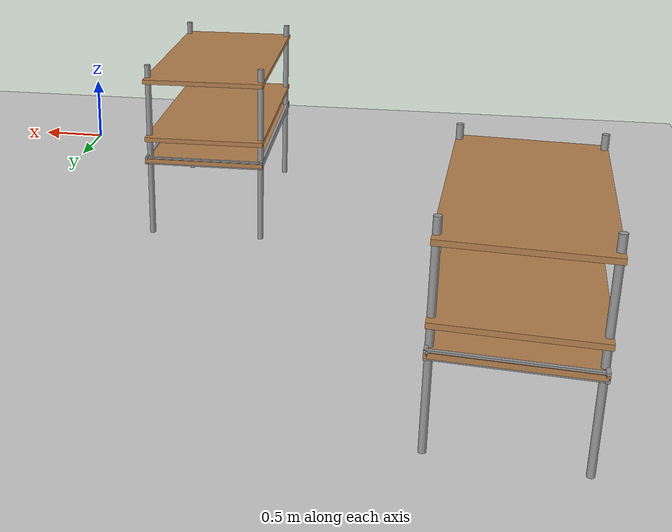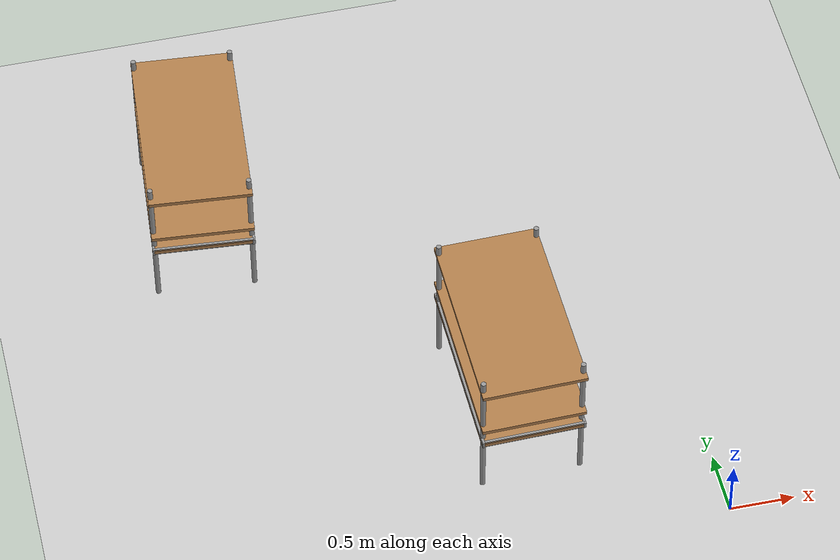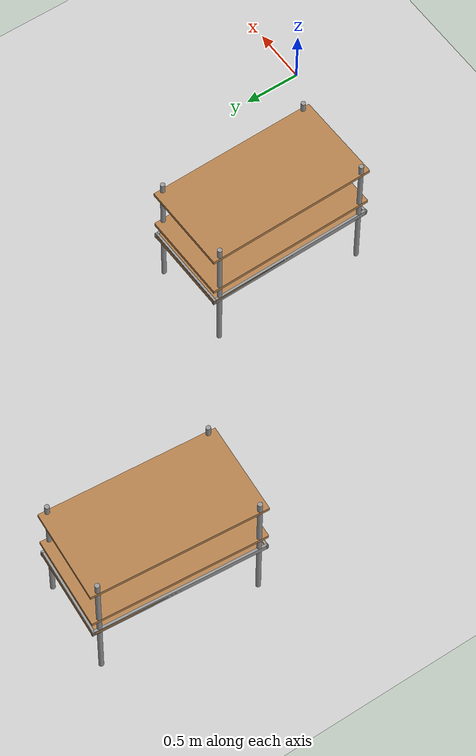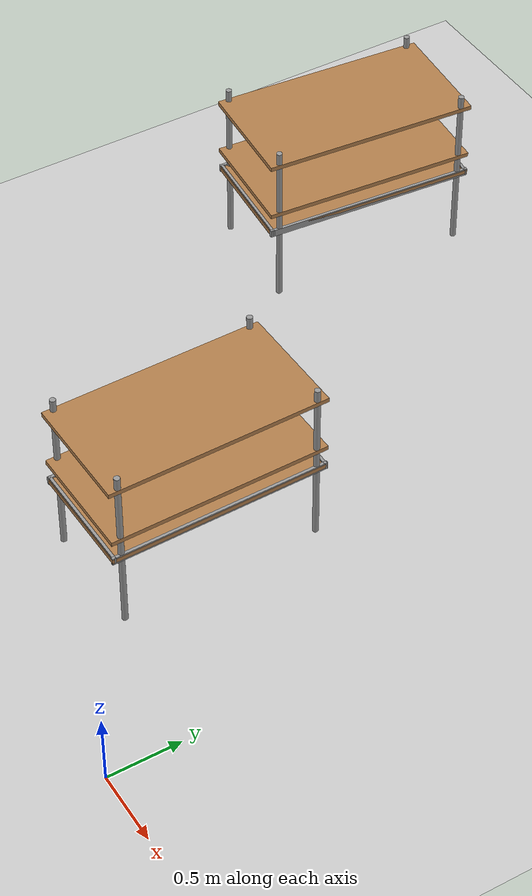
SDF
<sdf version="1.7">
 <world name="default">
  <model name="ground_plane">
   <static>1</static>
   <link name="link">
    <collision name="collision">
     <geometry><plane><normal>0 0 1</normal><size>100 100</size></plane></geometry>
     <surface><friction><ode><mu>100</mu><mu2>50</mu2></ode></friction></surface>
    </collision>
    <visual name="visual">
     <cast_shadows>0</cast_shadows>
     <geometry><plane><normal>0 0 1</normal><size>100 100</size></plane></geometry>
     <material>
      <script><uri>file://media/materials/scripts/gazebo.material</uri><name>Gazebo/Grey</name></script>
     </material>
    </visual>
   </link>
  </model>
  <model name="warehouse_pallet_clone_clone">
   <link name="warehouse_pallet::link">
    <pose>0 0 -0 0 -0 1.57</pose>
    <inertial>
     <inertia>
      <ixx>0.0267042</ixx>
      <ixy>0</ixy>
      <ixz>0</ixz>
      <iyy>0.0937875</iyy>
      <iyz>0</iyz>
      <izz>0.120417</izz>
     </inertia>
     <mass>0.5</mass>
    </inertial>
    <visual name="holding1_visual">
     <pose>0 0.39 0.45 0 -0 0</pose>
     <geometry><box><size>1.5 0.02 0.05</size></box></geometry>
     <material>
      <script><uri>file://media/materials/scripts/gazebo.material</uri><name>Gazebo/Grey</name></script>
      <shader type="pixel"><normal_map>__default__</normal_map></shader>
      <ambient>0.3 0.3 0.3 1</ambient>
      <diffuse>0.7 0.7 0.7 1</diffuse>
      <specular>0.01 0.01 0.01 1</specular>
      <emissive>0 0 0 1</emissive>
     </material>
    </visual>
    <visual name="front_left_leg">
     <pose>0.68 0.38 0.5 0 -0 0</pose>
     <geometry><cylinder><radius>0.02</radius><length>1.2</length></cylinder></geometry>
     <material>
      <script><uri>file://media/materials/scripts/gazebo.material</uri><name>Gazebo/Grey</name></script>
      <shader type="pixel"><normal_map>__default__</normal_map></shader>
      <ambient>0.3 0.3 0.3 1</ambient>
      <diffuse>0.7 0.7 0.7 1</diffuse>
      <specular>0.01 0.01 0.01 1</specular>
      <emissive>0 0 0 1</emissive>
     </material>
    </visual>
    <visual name="front_right_leg">
     <pose>0.68 -0.38 0.5 0 -0 0</pose>
     <geometry><cylinder><radius>0.02</radius><length>1.2</length></cylinder></geometry>
     <material>
      <script><uri>file://media/materials/scripts/gazebo.material</uri><name>Gazebo/Grey</name></script>
      <shader type="pixel"><normal_map>__default__</normal_map></shader>
      <ambient>0.3 0.3 0.3 1</ambient>
      <diffuse>0.7 0.7 0.7 1</diffuse>
      <specular>0.01 0.01 0.01 1</specular>
      <emissive>0 0 0 1</emissive>
     </material>
    </visual>
    <visual name="back_right_leg">
     <pose>-0.68 -0.38 0.5 0 -0 0</pose>
     <geometry><cylinder><radius>0.02</radius><length>1.2</length></cylinder></geometry>
     <material>
      <script><uri>file://media/materials/scripts/gazebo.material</uri><name>Gazebo/Grey</name></script>
      <shader type="pixel"><normal_map>__default__</normal_map></shader>
      <ambient>0.3 0.3 0.3 1</ambient>
      <diffuse>0.7 0.7 0.7 1</diffuse>
      <specular>0.01 0.01 0.01 1</specular>
      <emissive>0 0 0 1</emissive>
     </material>
    </visual>
    <visual name="back_left_leg">
     <pose>-0.68 0.38 0.5 0 -0 0</pose>
     <geometry><cylinder><radius>0.02</radius><length>1.2</length></cylinder></geometry>
     <material>
      <script><uri>file://media/materials/scripts/gazebo.material</uri><name>Gazebo/Grey</name></script>
      <shader type="pixel"><normal_map>__default__</normal_map></shader>
      <ambient>0.3 0.3 0.3 1</ambient>
      <diffuse>0.7 0.7 0.7 1</diffuse>
      <specular>0.01 0.01 0.01 1</specular>
      <emissive>0 0 0 1</emissive>
     </material>
    </visual>
    <visual name="visual1">
     <pose>0 0 0.45 0 -0 0</pose>
     <geometry><box><size>1.5 0.8 0.03</size></box></geometry>
     <material>
      <script><uri>file://media/materials/scripts/gazebo.material</uri><name>Gazebo/Wood</name></script>
      <shader type="pixel"><normal_map>__default__</normal_map></shader>
      <ambient>1 1 1 1</ambient>
      <diffuse>1 1 1 1</diffuse>
      <specular>0.2 0.2 0.2 1</specular>
      <emissive>0 0 0 1</emissive>
     </material>
    </visual>
    <visual name="holding2_visual">
     <pose>0 -0.39 0.45 0 -0 0</pose>
     <geometry><box><size>1.5 0.02 0.05</size></box></geometry>
     <material>
      <script><uri>file://media/materials/scripts/gazebo.material</uri><name>Gazebo/Grey</name></script>
      <shader type="pixel"><normal_map>__default__</normal_map></shader>
      <ambient>0.3 0.3 0.3 1</ambient>
      <diffuse>0.7 0.7 0.7 1</diffuse>
      <specular>0.01 0.01 0.01 1</specular>
      <emissive>0 0 0 1</emissive>
     </material>
    </visual>
    <visual name="holding3_visual">
     <pose>0.735 0 0.45 0 -0 1.57</pose>
     <geometry><box><size>0.8 0.02 0.05</size></box></geometry>
     <material>
      <script><uri>file://media/materials/scripts/gazebo.material</uri><name>Gazebo/Grey</name></script>
      <shader type="pixel"><normal_map>__default__</normal_map></shader>
      <ambient>0.3 0.3 0.3 1</ambient>
      <diffuse>0.7 0.7 0.7 1</diffuse>
      <specular>0.01 0.01 0.01 1</specular>
      <emissive>0 0 0 1</emissive>
     </material>
    </visual>
    <visual name="holding4_visual">
     <pose>-0.735 0 0.45 0 -0 1.57</pose>
     <geometry><box><size>0.8 0.02 0.05</size></box></geometry>
     <material>
      <script><uri>file://media/materials/scripts/gazebo.material</uri><name>Gazebo/Grey</name></script>
      <shader type="pixel"><normal_map>__default__</normal_map></shader>
      <ambient>0.3 0.3 0.3 1</ambient>
      <diffuse>0.7 0.7 0.7 1</diffuse>
      <specular>0.01 0.01 0.01 1</specular>
      <emissive>0 0 0 1</emissive>
     </material>
    </visual>
    <visual name="visual2">
     <pose>0 0 0.6 0 -0 0</pose>
     <geometry><box><size>1.5 0.8 0.03</size></box></geometry>
     <material>
      <script><uri>file://media/materials/scripts/gazebo.material</uri><name>Gazebo/Wood</name></script>
      <shader type="pixel"><normal_map>__default__</normal_map></shader>
      <ambient>1 1 1 1</ambient>
      <diffuse>1 1 1 1</diffuse>
      <specular>0.2 0.2 0.2 1</specular>
      <emissive>0 0 0 1</emissive>
     </material>
    </visual>
    <visual name="visual3">
     <pose>0 0 1 0 -0 0</pose>
     <geometry><box><size>1.5 0.8 0.03</size></box></geometry>
     <material>
      <script><uri>file://media/materials/scripts/gazebo.material</uri><name>Gazebo/Wood</name></script>
      <shader type="pixel"><normal_map>__default__</normal_map></shader>
      <ambient>1 1 1 1</ambient>
      <diffuse>1 1 1 1</diffuse>
      <specular>0.2 0.2 0.2 1</specular>
      <emissive>0 0 0 1</emissive>
     </material>
    </visual>
    <collision name="surface1">
     <pose>0 0 0.45 0 -0 0</pose>
     <geometry><box><size>1.5 0.8 0.03</size></box></geometry>
     <surface>
      <friction>
       <ode><mu>20</mu><mu2>20</mu2><fdir1>0 0 0</fdir1><slip1>0</slip1><slip2>0</slip2></ode>
       <torsional>
        <coefficient>1</coefficient>
        <patch_radius>0</patch_radius>
        <surface_radius>0</surface_radius>
        <use_patch_radius>1</use_patch_radius>
        <ode><slip>0</slip></ode>
       </torsional>
      </friction>
      <bounce><restitution_coefficient>0</restitution_coefficient><threshold>1e+06</threshold></bounce>
      <contact>
       <collide_without_contact>0</collide_without_contact>
       <collide_without_contact_bitmask>1</collide_without_contact_bitmask>
       <collide_bitmask>1</collide_bitmask>
       <ode>
        <soft_cfm>0</soft_cfm>
        <soft_erp>0.2</soft_erp>
        <kp>1e+13</kp>
        <kd>1</kd>
        <max_vel>0.01</max_vel>
        <min_depth>0</min_depth>
       </ode>
       <bullet>
        <split_impulse>1</split_impulse>
        <split_impulse_penetration_threshold>-0.01</split_impulse_penetration_threshold>
        <soft_cfm>0</soft_cfm>
        <soft_erp>0.2</soft_erp>
        <kp>1e+13</kp>
        <kd>1</kd>
       </bullet>
      </contact>
     </surface>
    </collision>
    <collision name="holding1_collision">
     <pose>0 0.39 0.45 0 -0 0</pose>
     <geometry><box><size>1.5 0.02 0.05</size></box></geometry>
     <surface>
      <friction>
       <ode><mu>1e+09</mu><mu2>1e+09</mu2><fdir1>0 0 0</fdir1><slip1>0</slip1><slip2>0</slip2></ode>
       <torsional>
        <coefficient>1</coefficient>
        <patch_radius>0</patch_radius>
        <surface_radius>0</surface_radius>
        <use_patch_radius>1</use_patch_radius>
        <ode><slip>0</slip></ode>
       </torsional>
      </friction>
      <bounce><restitution_coefficient>0</restitution_coefficient><threshold>1e+06</threshold></bounce>
      <contact>
       <collide_without_contact>0</collide_without_contact>
       <collide_without_contact_bitmask>1</collide_without_contact_bitmask>
       <collide_bitmask>1</collide_bitmask>
       <ode>
        <soft_cfm>0</soft_cfm>
        <soft_erp>0.2</soft_erp>
        <kp>1e+13</kp>
        <kd>1</kd>
        <max_vel>0.01</max_vel>
        <min_depth>0</min_depth>
       </ode>
       <bullet>
        <split_impulse>1</split_impulse>
        <split_impulse_penetration_threshold>-0.01</split_impulse_penetration_threshold>
        <soft_cfm>0</soft_cfm>
        <soft_erp>0.2</soft_erp>
        <kp>1e+13</kp>
        <kd>1</kd>
       </bullet>
      </contact>
     </surface>
    </collision>
    <collision name="holding2_collision">
     <pose>0 -0.39 0.45 0 -0 0</pose>
     <geometry><box><size>1.5 0.02 0.05</size></box></geometry>
     <surface>
      <friction>
       <ode><mu>1e+09</mu><mu2>1e+09</mu2><fdir1>0 0 0</fdir1><slip1>0</slip1><slip2>0</slip2></ode>
       <torsional>
        <coefficient>1</coefficient>
        <patch_radius>0</patch_radius>
        <surface_radius>0</surface_radius>
        <use_patch_radius>1</use_patch_radius>
        <ode><slip>0</slip></ode>
       </torsional>
      </friction>
      <bounce><restitution_coefficient>0</restitution_coefficient><threshold>1e+06</threshold></bounce>
      <contact>
       <collide_without_contact>0</collide_without_contact>
       <collide_without_contact_bitmask>1</collide_without_contact_bitmask>
       <collide_bitmask>1</collide_bitmask>
       <ode>
        <soft_cfm>0</soft_cfm>
        <soft_erp>0.2</soft_erp>
        <kp>1e+13</kp>
        <kd>1</kd>
        <max_vel>0.01</max_vel>
        <min_depth>0</min_depth>
       </ode>
       <bullet>
        <split_impulse>1</split_impulse>
        <split_impulse_penetration_threshold>-0.01</split_impulse_penetration_threshold>
        <soft_cfm>0</soft_cfm>
        <soft_erp>0.2</soft_erp>
        <kp>1e+13</kp>
        <kd>1</kd>
       </bullet>
      </contact>
     </surface>
    </collision>
    <collision name="holding3_collision">
     <pose>0.735 0 0.45 0 -0 1.57</pose>
     <geometry><box><size>0.8 0.02 0.05</size></box></geometry>
     <surface>
      <friction>
       <ode><mu>1e+09</mu><mu2>1e+09</mu2><fdir1>0 0 0</fdir1><slip1>0</slip1><slip2>0</slip2></ode>
       <torsional>
        <coefficient>1</coefficient>
        <patch_radius>0</patch_radius>
        <surface_radius>0</surface_radius>
        <use_patch_radius>1</use_patch_radius>
        <ode><slip>0</slip></ode>
       </torsional>
      </friction>
      <bounce><restitution_coefficient>0</restitution_coefficient><threshold>1e+06</threshold></bounce>
      <contact>
       <collide_without_contact>0</collide_without_contact>
       <collide_without_contact_bitmask>1</collide_without_contact_bitmask>
       <collide_bitmask>1</collide_bitmask>
       <ode>
        <soft_cfm>0</soft_cfm>
        <soft_erp>0.2</soft_erp>
        <kp>1e+13</kp>
        <kd>1</kd>
        <max_vel>0.01</max_vel>
        <min_depth>0</min_depth>
       </ode>
       <bullet>
        <split_impulse>1</split_impulse>
        <split_impulse_penetration_threshold>-0.01</split_impulse_penetration_threshold>
        <soft_cfm>0</soft_cfm>
        <soft_erp>0.2</soft_erp>
        <kp>1e+13</kp>
        <kd>1</kd>
       </bullet>
      </contact>
     </surface>
    </collision>
    <collision name="holding4_collision">
     <pose>-0.735 0 0.45 0 -0 1.57</pose>
     <geometry><box><size>0.8 0.02 0.05</size></box></geometry>
     <surface>
      <friction>
       <ode><mu>1e+09</mu><mu2>1e+09</mu2><fdir1>0 0 0</fdir1><slip1>0</slip1><slip2>0</slip2></ode>
       <torsional>
        <coefficient>1</coefficient>
        <patch_radius>0</patch_radius>
        <surface_radius>0</surface_radius>
        <use_patch_radius>1</use_patch_radius>
        <ode><slip>0</slip></ode>
       </torsional>
      </friction>
      <bounce><restitution_coefficient>0</restitution_coefficient><threshold>1e+06</threshold></bounce>
      <contact>
       <collide_without_contact>0</collide_without_contact>
       <collide_without_contact_bitmask>1</collide_without_contact_bitmask>
       <collide_bitmask>1</collide_bitmask>
       <ode>
        <soft_cfm>0</soft_cfm>
        <soft_erp>0.2</soft_erp>
        <kp>1e+13</kp>
        <kd>1</kd>
        <max_vel>0.01</max_vel>
        <min_depth>0</min_depth>
       </ode>
       <bullet>
        <split_impulse>1</split_impulse>
        <split_impulse_penetration_threshold>-0.01</split_impulse_penetration_threshold>
        <soft_cfm>0</soft_cfm>
        <soft_erp>0.2</soft_erp>
        <kp>1e+13</kp>
        <kd>1</kd>
       </bullet>
      </contact>
     </surface>
    </collision>
    <collision name="surface3">
     <pose>0 0 1 0 -0 0</pose>
     <geometry><box><size>1.5 0.8 0.03</size></box></geometry>
     <surface>
      <friction>
       <ode><mu>2.5</mu><mu2>2.5</mu2><fdir1>0 0 0</fdir1><slip1>0</slip1><slip2>0</slip2></ode>
       <torsional>
        <coefficient>1</coefficient>
        <patch_radius>0</patch_radius>
        <surface_radius>0</surface_radius>
        <use_patch_radius>1</use_patch_radius>
        <ode><slip>0</slip></ode>
       </torsional>
      </friction>
      <bounce><restitution_coefficient>0</restitution_coefficient><threshold>1e+06</threshold></bounce>
      <contact>
       <collide_without_contact>0</collide_without_contact>
       <collide_without_contact_bitmask>1</collide_without_contact_bitmask>
       <collide_bitmask>1</collide_bitmask>
       <ode>
        <soft_cfm>0</soft_cfm>
        <soft_erp>0.2</soft_erp>
        <kp>1e+13</kp>
        <kd>1</kd>
        <max_vel>0.01</max_vel>
        <min_depth>0</min_depth>
       </ode>
       <bullet>
        <split_impulse>1</split_impulse>
        <split_impulse_penetration_threshold>-0.01</split_impulse_penetration_threshold>
        <soft_cfm>0</soft_cfm>
        <soft_erp>0.2</soft_erp>
        <kp>1e+13</kp>
        <kd>1</kd>
       </bullet>
      </contact>
     </surface>
    </collision>
    <collision name="surface2">
     <pose>0 0 0.6 0 -0 0</pose>
     <geometry><box><size>1.5 0.8 0.03</size></box></geometry>
     <surface>
      <friction>
       <ode><mu>2.5</mu><mu2>2.5</mu2><fdir1>0 0 0</fdir1><slip1>0</slip1><slip2>0</slip2></ode>
       <torsional>
        <coefficient>1</coefficient>
        <patch_radius>0</patch_radius>
        <surface_radius>0</surface_radius>
        <use_patch_radius>1</use_patch_radius>
        <ode><slip>0</slip></ode>
       </torsional>
      </friction>
      <bounce><restitution_coefficient>0</restitution_coefficient><threshold>1e+06</threshold></bounce>
      <contact>
       <collide_without_contact>0</collide_without_contact>
       <collide_without_contact_bitmask>1</collide_without_contact_bitmask>
       <collide_bitmask>1</collide_bitmask>
       <ode>
        <soft_cfm>0</soft_cfm>
        <soft_erp>0.2</soft_erp>
        <kp>1e+13</kp>
        <kd>1</kd>
        <max_vel>0.01</max_vel>
        <min_depth>0</min_depth>
       </ode>
       <bullet>
        <split_impulse>1</split_impulse>
        <split_impulse_penetration_threshold>-0.01</split_impulse_penetration_threshold>
        <soft_cfm>0</soft_cfm>
        <soft_erp>0.2</soft_erp>
        <kp>1e+13</kp>
        <kd>1</kd>
       </bullet>
      </contact>
     </surface>
    </collision>
    <collision name="front_right_leg">
     <pose>0.68 -0.38 0.5 0 -0 0</pose>
     <geometry><cylinder><radius>0.02</radius><length>1</length></cylinder></geometry>
     <surface>
      <friction>
       <ode><mu>1</mu><mu2>1.2</mu2><fdir1>0 0 0</fdir1><slip1>0</slip1><slip2>0</slip2></ode>
       <torsional>
        <coefficient>1</coefficient>
        <patch_radius>0</patch_radius>
        <surface_radius>0</surface_radius>
        <use_patch_radius>1</use_patch_radius>
        <ode><slip>0</slip></ode>
       </torsional>
      </friction>
      <bounce><restitution_coefficient>0</restitution_coefficient><threshold>1e+06</threshold></bounce>
      <contact>
       <collide_without_contact>0</collide_without_contact>
       <collide_without_contact_bitmask>1</collide_without_contact_bitmask>
       <collide_bitmask>1</collide_bitmask>
       <ode>
        <soft_cfm>0</soft_cfm>
        <soft_erp>0.2</soft_erp>
        <kp>1e+13</kp>
        <kd>1</kd>
        <max_vel>0.01</max_vel>
        <min_depth>0</min_depth>
       </ode>
       <bullet>
        <split_impulse>1</split_impulse>
        <split_impulse_penetration_threshold>-0.01</split_impulse_penetration_threshold>
        <soft_cfm>0</soft_cfm>
        <soft_erp>0.2</soft_erp>
        <kp>1e+13</kp>
        <kd>1</kd>
       </bullet>
      </contact>
     </surface>
    </collision>
    <collision name="back_right_leg">
     <pose>-0.68 -0.38 0.5 0 -0 0</pose>
     <geometry><cylinder><radius>0.02</radius><length>1.2</length></cylinder></geometry>
     <surface>
      <friction>
       <ode><mu>1</mu><mu2>1</mu2><fdir1>0 0 0</fdir1><slip1>0</slip1><slip2>0</slip2></ode>
       <torsional>
        <coefficient>1</coefficient>
        <patch_radius>0</patch_radius>
        <surface_radius>0</surface_radius>
        <use_patch_radius>1</use_patch_radius>
        <ode><slip>0</slip></ode>
       </torsional>
      </friction>
      <bounce><restitution_coefficient>0</restitution_coefficient><threshold>1e+06</threshold></bounce>
      <contact>
       <collide_without_contact>0</collide_without_contact>
       <collide_without_contact_bitmask>1</collide_without_contact_bitmask>
       <collide_bitmask>1</collide_bitmask>
       <ode>
        <soft_cfm>0</soft_cfm>
        <soft_erp>0.2</soft_erp>
        <kp>1e+13</kp>
        <kd>1</kd>
        <max_vel>0.01</max_vel>
        <min_depth>0</min_depth>
       </ode>
       <bullet>
        <split_impulse>1</split_impulse>
        <split_impulse_penetration_threshold>-0.01</split_impulse_penetration_threshold>
        <soft_cfm>0</soft_cfm>
        <soft_erp>0.2</soft_erp>
        <kp>1e+13</kp>
        <kd>1</kd>
       </bullet>
      </contact>
     </surface>
    </collision>
    <collision name="front_left_leg">
     <pose>0.68 0.38 0.5 0 -0 0</pose>
     <geometry><cylinder><radius>0.02</radius><length>1.2</length></cylinder></geometry>
     <surface>
      <friction>
       <ode><mu>1</mu><mu2>1</mu2><fdir1>0 0 0</fdir1><slip1>0</slip1><slip2>0</slip2></ode>
       <torsional>
        <coefficient>1</coefficient>
        <patch_radius>0</patch_radius>
        <surface_radius>0</surface_radius>
        <use_patch_radius>1</use_patch_radius>
        <ode><slip>0</slip></ode>
       </torsional>
      </friction>
      <bounce><restitution_coefficient>0</restitution_coefficient><threshold>1e+06</threshold></bounce>
      <contact>
       <collide_without_contact>0</collide_without_contact>
       <collide_without_contact_bitmask>1</collide_without_contact_bitmask>
       <collide_bitmask>1</collide_bitmask>
       <ode>
        <soft_cfm>0</soft_cfm>
        <soft_erp>0.2</soft_erp>
        <kp>1e+13</kp>
        <kd>1</kd>
        <max_vel>0.01</max_vel>
        <min_depth>0</min_depth>
       </ode>
       <bullet>
        <split_impulse>1</split_impulse>
        <split_impulse_penetration_threshold>-0.01</split_impulse_penetration_threshold>
        <soft_cfm>0</soft_cfm>
        <soft_erp>0.2</soft_erp>
        <kp>1e+13</kp>
        <kd>1</kd>
       </bullet>
      </contact>
     </surface>
    </collision>
    <collision name="back_left_leg">
     <pose>-0.68 0.38 0.5 0 -0 0</pose>
     <geometry><cylinder><radius>0.02</radius><length>1.2</length></cylinder></geometry>
     <surface>
      <friction>
       <ode><mu>1</mu><mu2>1</mu2><fdir1>0 0 0</fdir1><slip1>0</slip1><slip2>0</slip2></ode>
       <torsional>
        <coefficient>1</coefficient>
        <patch_radius>0</patch_radius>
        <surface_radius>0</surface_radius>
        <use_patch_radius>1</use_patch_radius>
        <ode><slip>0</slip></ode>
       </torsional>
      </friction>
      <bounce><restitution_coefficient>0</restitution_coefficient><threshold>1e+06</threshold></bounce>
      <contact>
       <collide_without_contact>0</collide_without_contact>
       <collide_without_contact_bitmask>1</collide_without_contact_bitmask>
       <collide_bitmask>1</collide_bitmask>
       <ode>
        <soft_cfm>0</soft_cfm>
        <soft_erp>0.2</soft_erp>
        <kp>1e+13</kp>
        <kd>1</kd>
        <max_vel>0.01</max_vel>
        <min_depth>0</min_depth>
       </ode>
       <bullet>
        <split_impulse>1</split_impulse>
        <split_impulse_penetration_threshold>-0.01</split_impulse_penetration_threshold>
        <soft_cfm>0</soft_cfm>
        <soft_erp>0.2</soft_erp>
        <kp>1e+13</kp>
        <kd>1</kd>
       </bullet>
      </contact>
     </surface>
    </collision>
   </link>
   <static>0</static>
   <pose>-3.36834 3.71303 0.099964 -8.7e-05 0.000264 -0.081578</pose>
  </model>
  <model name="warehouse_pallet_clone_0_clone">
   <link name="warehouse_pallet::link">
    <pose>0 0 -0 0 -0 1.57</pose>
    <inertial>
     <inertia>
      <ixx>0.0267042</ixx>
      <ixy>0</ixy>
      <ixz>0</ixz>
      <iyy>0.0937875</iyy>
      <iyz>0</iyz>
      <izz>0.120417</izz>
     </inertia>
     <mass>0.5</mass>
    </inertial>
    <visual name="holding1_visual">
     <pose>0 0.39 0.45 0 -0 0</pose>
     <geometry><box><size>1.5 0.02 0.05</size></box></geometry>
     <material>
      <script><uri>file://media/materials/scripts/gazebo.material</uri><name>Gazebo/Grey</name></script>
      <shader type="pixel"><normal_map>__default__</normal_map></shader>
      <ambient>0.3 0.3 0.3 1</ambient>
      <diffuse>0.7 0.7 0.7 1</diffuse>
      <specular>0.01 0.01 0.01 1</specular>
      <emissive>0 0 0 1</emissive>
     </material>
    </visual>
    <visual name="front_left_leg">
     <pose>0.68 0.38 0.5 0 -0 0</pose>
     <geometry><cylinder><radius>0.02</radius><length>1.2</length></cylinder></geometry>
     <material>
      <script><uri>file://media/materials/scripts/gazebo.material</uri><name>Gazebo/Grey</name></script>
      <shader type="pixel"><normal_map>__default__</normal_map></shader>
      <ambient>0.3 0.3 0.3 1</ambient>
      <diffuse>0.7 0.7 0.7 1</diffuse>
      <specular>0.01 0.01 0.01 1</specular>
      <emissive>0 0 0 1</emissive>
     </material>
    </visual>
    <visual name="front_right_leg">
     <pose>0.68 -0.38 0.5 0 -0 0</pose>
     <geometry><cylinder><radius>0.02</radius><length>1.2</length></cylinder></geometry>
     <material>
      <script><uri>file://media/materials/scripts/gazebo.material</uri><name>Gazebo/Grey</name></script>
      <shader type="pixel"><normal_map>__default__</normal_map></shader>
      <ambient>0.3 0.3 0.3 1</ambient>
      <diffuse>0.7 0.7 0.7 1</diffuse>
      <specular>0.01 0.01 0.01 1</specular>
      <emissive>0 0 0 1</emissive>
     </material>
    </visual>
    <visual name="back_right_leg">
     <pose>-0.68 -0.38 0.5 0 -0 0</pose>
     <geometry><cylinder><radius>0.02</radius><length>1.2</length></cylinder></geometry>
     <material>
      <script><uri>file://media/materials/scripts/gazebo.material</uri><name>Gazebo/Grey</name></script>
      <shader type="pixel"><normal_map>__default__</normal_map></shader>
      <ambient>0.3 0.3 0.3 1</ambient>
      <diffuse>0.7 0.7 0.7 1</diffuse>
      <specular>0.01 0.01 0.01 1</specular>
      <emissive>0 0 0 1</emissive>
     </material>
    </visual>
    <visual name="back_left_leg">
     <pose>-0.68 0.38 0.5 0 -0 0</pose>
     <geometry><cylinder><radius>0.02</radius><length>1.2</length></cylinder></geometry>
     <material>
      <script><uri>file://media/materials/scripts/gazebo.material</uri><name>Gazebo/Grey</name></script>
      <shader type="pixel"><normal_map>__default__</normal_map></shader>
      <ambient>0.3 0.3 0.3 1</ambient>
      <diffuse>0.7 0.7 0.7 1</diffuse>
      <specular>0.01 0.01 0.01 1</specular>
      <emissive>0 0 0 1</emissive>
     </material>
    </visual>
    <visual name="visual1">
     <pose>0 0 0.45 0 -0 0</pose>
     <geometry><box><size>1.5 0.8 0.03</size></box></geometry>
     <material>
      <script><uri>file://media/materials/scripts/gazebo.material</uri><name>Gazebo/Wood</name></script>
      <shader type="pixel"><normal_map>__default__</normal_map></shader>
      <ambient>1 1 1 1</ambient>
      <diffuse>1 1 1 1</diffuse>
      <specular>0.2 0.2 0.2 1</specular>
      <emissive>0 0 0 1</emissive>
     </material>
    </visual>
    <visual name="holding2_visual">
     <pose>0 -0.39 0.45 0 -0 0</pose>
     <geometry><box><size>1.5 0.02 0.05</size></box></geometry>
     <material>
      <script><uri>file://media/materials/scripts/gazebo.material</uri><name>Gazebo/Grey</name></script>
      <shader type="pixel"><normal_map>__default__</normal_map></shader>
      <ambient>0.3 0.3 0.3 1</ambient>
      <diffuse>0.7 0.7 0.7 1</diffuse>
      <specular>0.01 0.01 0.01 1</specular>
      <emissive>0 0 0 1</emissive>
     </material>
    </visual>
    <visual name="holding3_visual">
     <pose>0.735 0 0.45 0 -0 1.57</pose>
     <geometry><box><size>0.8 0.02 0.05</size></box></geometry>
     <material>
      <script><uri>file://media/materials/scripts/gazebo.material</uri><name>Gazebo/Grey</name></script>
      <shader type="pixel"><normal_map>__default__</normal_map></shader>
      <ambient>0.3 0.3 0.3 1</ambient>
      <diffuse>0.7 0.7 0.7 1</diffuse>
      <specular>0.01 0.01 0.01 1</specular>
      <emissive>0 0 0 1</emissive>
     </material>
    </visual>
    <visual name="holding4_visual">
     <pose>-0.735 0 0.45 0 -0 1.57</pose>
     <geometry><box><size>0.8 0.02 0.05</size></box></geometry>
     <material>
      <script><uri>file://media/materials/scripts/gazebo.material</uri><name>Gazebo/Grey</name></script>
      <shader type="pixel"><normal_map>__default__</normal_map></shader>
      <ambient>0.3 0.3 0.3 1</ambient>
      <diffuse>0.7 0.7 0.7 1</diffuse>
      <specular>0.01 0.01 0.01 1</specular>
      <emissive>0 0 0 1</emissive>
     </material>
    </visual>
    <visual name="visual2">
     <pose>0 0 0.6 0 -0 0</pose>
     <geometry><box><size>1.5 0.8 0.03</size></box></geometry>
     <material>
      <script><uri>file://media/materials/scripts/gazebo.material</uri><name>Gazebo/Wood</name></script>
      <shader type="pixel"><normal_map>__default__</normal_map></shader>
      <ambient>1 1 1 1</ambient>
      <diffuse>1 1 1 1</diffuse>
      <specular>0.2 0.2 0.2 1</specular>
      <emissive>0 0 0 1</emissive>
     </material>
    </visual>
    <visual name="visual3">
     <pose>0 0 1 0 -0 0</pose>
     <geometry><box><size>1.5 0.8 0.03</size></box></geometry>
     <material>
      <script><uri>file://media/materials/scripts/gazebo.material</uri><name>Gazebo/Wood</name></script>
      <shader type="pixel"><normal_map>__default__</normal_map></shader>
      <ambient>1 1 1 1</ambient>
      <diffuse>1 1 1 1</diffuse>
      <specular>0.2 0.2 0.2 1</specular>
      <emissive>0 0 0 1</emissive>
     </material>
    </visual>
    <collision name="surface1">
     <pose>0 0 0.45 0 -0 0</pose>
     <geometry><box><size>1.5 0.8 0.03</size></box></geometry>
     <surface>
      <friction>
       <ode><mu>20</mu><mu2>20</mu2><fdir1>0 0 0</fdir1><slip1>0</slip1><slip2>0</slip2></ode>
       <torsional>
        <coefficient>1</coefficient>
        <patch_radius>0</patch_radius>
        <surface_radius>0</surface_radius>
        <use_patch_radius>1</use_patch_radius>
        <ode><slip>0</slip></ode>
       </torsional>
      </friction>
      <bounce><restitution_coefficient>0</restitution_coefficient><threshold>1e+06</threshold></bounce>
      <contact>
       <collide_without_contact>0</collide_without_contact>
       <collide_without_contact_bitmask>1</collide_without_contact_bitmask>
       <collide_bitmask>1</collide_bitmask>
       <ode>
        <soft_cfm>0</soft_cfm>
        <soft_erp>0.2</soft_erp>
        <kp>1e+13</kp>
        <kd>1</kd>
        <max_vel>0.01</max_vel>
        <min_depth>0</min_depth>
       </ode>
       <bullet>
        <split_impulse>1</split_impulse>
        <split_impulse_penetration_threshold>-0.01</split_impulse_penetration_threshold>
        <soft_cfm>0</soft_cfm>
        <soft_erp>0.2</soft_erp>
        <kp>1e+13</kp>
        <kd>1</kd>
       </bullet>
      </contact>
     </surface>
    </collision>
    <collision name="holding1_collision">
     <pose>0 0.39 0.45 0 -0 0</pose>
     <geometry><box><size>1.5 0.02 0.05</size></box></geometry>
     <surface>
      <friction>
       <ode><mu>1e+09</mu><mu2>1e+09</mu2><fdir1>0 0 0</fdir1><slip1>0</slip1><slip2>0</slip2></ode>
       <torsional>
        <coefficient>1</coefficient>
        <patch_radius>0</patch_radius>
        <surface_radius>0</surface_radius>
        <use_patch_radius>1</use_patch_radius>
        <ode><slip>0</slip></ode>
       </torsional>
      </friction>
      <bounce><restitution_coefficient>0</restitution_coefficient><threshold>1e+06</threshold></bounce>
      <contact>
       <collide_without_contact>0</collide_without_contact>
       <collide_without_contact_bitmask>1</collide_without_contact_bitmask>
       <collide_bitmask>1</collide_bitmask>
       <ode>
        <soft_cfm>0</soft_cfm>
        <soft_erp>0.2</soft_erp>
        <kp>1e+13</kp>
        <kd>1</kd>
        <max_vel>0.01</max_vel>
        <min_depth>0</min_depth>
       </ode>
       <bullet>
        <split_impulse>1</split_impulse>
        <split_impulse_penetration_threshold>-0.01</split_impulse_penetration_threshold>
        <soft_cfm>0</soft_cfm>
        <soft_erp>0.2</soft_erp>
        <kp>1e+13</kp>
        <kd>1</kd>
       </bullet>
      </contact>
     </surface>
    </collision>
    <collision name="holding2_collision">
     <pose>0 -0.39 0.45 0 -0 0</pose>
     <geometry><box><size>1.5 0.02 0.05</size></box></geometry>
     <surface>
      <friction>
       <ode><mu>1e+09</mu><mu2>1e+09</mu2><fdir1>0 0 0</fdir1><slip1>0</slip1><slip2>0</slip2></ode>
       <torsional>
        <coefficient>1</coefficient>
        <patch_radius>0</patch_radius>
        <surface_radius>0</surface_radius>
        <use_patch_radius>1</use_patch_radius>
        <ode><slip>0</slip></ode>
       </torsional>
      </friction>
      <bounce><restitution_coefficient>0</restitution_coefficient><threshold>1e+06</threshold></bounce>
      <contact>
       <collide_without_contact>0</collide_without_contact>
       <collide_without_contact_bitmask>1</collide_without_contact_bitmask>
       <collide_bitmask>1</collide_bitmask>
       <ode>
        <soft_cfm>0</soft_cfm>
        <soft_erp>0.2</soft_erp>
        <kp>1e+13</kp>
        <kd>1</kd>
        <max_vel>0.01</max_vel>
        <min_depth>0</min_depth>
       </ode>
       <bullet>
        <split_impulse>1</split_impulse>
        <split_impulse_penetration_threshold>-0.01</split_impulse_penetration_threshold>
        <soft_cfm>0</soft_cfm>
        <soft_erp>0.2</soft_erp>
        <kp>1e+13</kp>
        <kd>1</kd>
       </bullet>
      </contact>
     </surface>
    </collision>
    <collision name="holding3_collision">
     <pose>0.735 0 0.45 0 -0 1.57</pose>
     <geometry><box><size>0.8 0.02 0.05</size></box></geometry>
     <surface>
      <friction>
       <ode><mu>1e+09</mu><mu2>1e+09</mu2><fdir1>0 0 0</fdir1><slip1>0</slip1><slip2>0</slip2></ode>
       <torsional>
        <coefficient>1</coefficient>
        <patch_radius>0</patch_radius>
        <surface_radius>0</surface_radius>
        <use_patch_radius>1</use_patch_radius>
        <ode><slip>0</slip></ode>
       </torsional>
      </friction>
      <bounce><restitution_coefficient>0</restitution_coefficient><threshold>1e+06</threshold></bounce>
      <contact>
       <collide_without_contact>0</collide_without_contact>
       <collide_without_contact_bitmask>1</collide_without_contact_bitmask>
       <collide_bitmask>1</collide_bitmask>
       <ode>
        <soft_cfm>0</soft_cfm>
        <soft_erp>0.2</soft_erp>
        <kp>1e+13</kp>
        <kd>1</kd>
        <max_vel>0.01</max_vel>
        <min_depth>0</min_depth>
       </ode>
       <bullet>
        <split_impulse>1</split_impulse>
        <split_impulse_penetration_threshold>-0.01</split_impulse_penetration_threshold>
        <soft_cfm>0</soft_cfm>
        <soft_erp>0.2</soft_erp>
        <kp>1e+13</kp>
        <kd>1</kd>
       </bullet>
      </contact>
     </surface>
    </collision>
    <collision name="holding4_collision">
     <pose>-0.735 0 0.45 0 -0 1.57</pose>
     <geometry><box><size>0.8 0.02 0.05</size></box></geometry>
     <surface>
      <friction>
       <ode><mu>1e+09</mu><mu2>1e+09</mu2><fdir1>0 0 0</fdir1><slip1>0</slip1><slip2>0</slip2></ode>
       <torsional>
        <coefficient>1</coefficient>
        <patch_radius>0</patch_radius>
        <surface_radius>0</surface_radius>
        <use_patch_radius>1</use_patch_radius>
        <ode><slip>0</slip></ode>
       </torsional>
      </friction>
      <bounce><restitution_coefficient>0</restitution_coefficient><threshold>1e+06</threshold></bounce>
      <contact>
       <collide_without_contact>0</collide_without_contact>
       <collide_without_contact_bitmask>1</collide_without_contact_bitmask>
       <collide_bitmask>1</collide_bitmask>
       <ode>
        <soft_cfm>0</soft_cfm>
        <soft_erp>0.2</soft_erp>
        <kp>1e+13</kp>
        <kd>1</kd>
        <max_vel>0.01</max_vel>
        <min_depth>0</min_depth>
       </ode>
       <bullet>
        <split_impulse>1</split_impulse>
        <split_impulse_penetration_threshold>-0.01</split_impulse_penetration_threshold>
        <soft_cfm>0</soft_cfm>
        <soft_erp>0.2</soft_erp>
        <kp>1e+13</kp>
        <kd>1</kd>
       </bullet>
      </contact>
     </surface>
    </collision>
    <collision name="surface3">
     <pose>0 0 1 0 -0 0</pose>
     <geometry><box><size>1.5 0.8 0.03</size></box></geometry>
     <surface>
      <friction>
       <ode><mu>2.5</mu><mu2>2.5</mu2><fdir1>0 0 0</fdir1><slip1>0</slip1><slip2>0</slip2></ode>
       <torsional>
        <coefficient>1</coefficient>
        <patch_radius>0</patch_radius>
        <surface_radius>0</surface_radius>
        <use_patch_radius>1</use_patch_radius>
        <ode><slip>0</slip></ode>
       </torsional>
      </friction>
      <bounce><restitution_coefficient>0</restitution_coefficient><threshold>1e+06</threshold></bounce>
      <contact>
       <collide_without_contact>0</collide_without_contact>
       <collide_without_contact_bitmask>1</collide_without_contact_bitmask>
       <collide_bitmask>1</collide_bitmask>
       <ode>
        <soft_cfm>0</soft_cfm>
        <soft_erp>0.2</soft_erp>
        <kp>1e+13</kp>
        <kd>1</kd>
        <max_vel>0.01</max_vel>
        <min_depth>0</min_depth>
       </ode>
       <bullet>
        <split_impulse>1</split_impulse>
        <split_impulse_penetration_threshold>-0.01</split_impulse_penetration_threshold>
        <soft_cfm>0</soft_cfm>
        <soft_erp>0.2</soft_erp>
        <kp>1e+13</kp>
        <kd>1</kd>
       </bullet>
      </contact>
     </surface>
    </collision>
    <collision name="surface2">
     <pose>0 0 0.6 0 -0 0</pose>
     <geometry><box><size>1.5 0.8 0.03</size></box></geometry>
     <surface>
      <friction>
       <ode><mu>2.5</mu><mu2>2.5</mu2><fdir1>0 0 0</fdir1><slip1>0</slip1><slip2>0</slip2></ode>
       <torsional>
        <coefficient>1</coefficient>
        <patch_radius>0</patch_radius>
        <surface_radius>0</surface_radius>
        <use_patch_radius>1</use_patch_radius>
        <ode><slip>0</slip></ode>
       </torsional>
      </friction>
      <bounce><restitution_coefficient>0</restitution_coefficient><threshold>1e+06</threshold></bounce>
      <contact>
       <collide_without_contact>0</collide_without_contact>
       <collide_without_contact_bitmask>1</collide_without_contact_bitmask>
       <collide_bitmask>1</collide_bitmask>
       <ode>
        <soft_cfm>0</soft_cfm>
        <soft_erp>0.2</soft_erp>
        <kp>1e+13</kp>
        <kd>1</kd>
        <max_vel>0.01</max_vel>
        <min_depth>0</min_depth>
       </ode>
       <bullet>
        <split_impulse>1</split_impulse>
        <split_impulse_penetration_threshold>-0.01</split_impulse_penetration_threshold>
        <soft_cfm>0</soft_cfm>
        <soft_erp>0.2</soft_erp>
        <kp>1e+13</kp>
        <kd>1</kd>
       </bullet>
      </contact>
     </surface>
    </collision>
    <collision name="front_right_leg">
     <pose>0.68 -0.38 0.5 0 -0 0</pose>
     <geometry><cylinder><radius>0.02</radius><length>1</length></cylinder></geometry>
     <surface>
      <friction>
       <ode><mu>1</mu><mu2>1.2</mu2><fdir1>0 0 0</fdir1><slip1>0</slip1><slip2>0</slip2></ode>
       <torsional>
        <coefficient>1</coefficient>
        <patch_radius>0</patch_radius>
        <surface_radius>0</surface_radius>
        <use_patch_radius>1</use_patch_radius>
        <ode><slip>0</slip></ode>
       </torsional>
      </friction>
      <bounce><restitution_coefficient>0</restitution_coefficient><threshold>1e+06</threshold></bounce>
      <contact>
       <collide_without_contact>0</collide_without_contact>
       <collide_without_contact_bitmask>1</collide_without_contact_bitmask>
       <collide_bitmask>1</collide_bitmask>
       <ode>
        <soft_cfm>0</soft_cfm>
        <soft_erp>0.2</soft_erp>
        <kp>1e+13</kp>
        <kd>1</kd>
        <max_vel>0.01</max_vel>
        <min_depth>0</min_depth>
       </ode>
       <bullet>
        <split_impulse>1</split_impulse>
        <split_impulse_penetration_threshold>-0.01</split_impulse_penetration_threshold>
        <soft_cfm>0</soft_cfm>
        <soft_erp>0.2</soft_erp>
        <kp>1e+13</kp>
        <kd>1</kd>
       </bullet>
      </contact>
     </surface>
    </collision>
    <collision name="back_right_leg">
     <pose>-0.68 -0.38 0.5 0 -0 0</pose>
     <geometry><cylinder><radius>0.02</radius><length>1.2</length></cylinder></geometry>
     <surface>
      <friction>
       <ode><mu>1</mu><mu2>1</mu2><fdir1>0 0 0</fdir1><slip1>0</slip1><slip2>0</slip2></ode>
       <torsional>
        <coefficient>1</coefficient>
        <patch_radius>0</patch_radius>
        <surface_radius>0</surface_radius>
        <use_patch_radius>1</use_patch_radius>
        <ode><slip>0</slip></ode>
       </torsional>
      </friction>
      <bounce><restitution_coefficient>0</restitution_coefficient><threshold>1e+06</threshold></bounce>
      <contact>
       <collide_without_contact>0</collide_without_contact>
       <collide_without_contact_bitmask>1</collide_without_contact_bitmask>
       <collide_bitmask>1</collide_bitmask>
       <ode>
        <soft_cfm>0</soft_cfm>
        <soft_erp>0.2</soft_erp>
        <kp>1e+13</kp>
        <kd>1</kd>
        <max_vel>0.01</max_vel>
        <min_depth>0</min_depth>
       </ode>
       <bullet>
        <split_impulse>1</split_impulse>
        <split_impulse_penetration_threshold>-0.01</split_impulse_penetration_threshold>
        <soft_cfm>0</soft_cfm>
        <soft_erp>0.2</soft_erp>
        <kp>1e+13</kp>
        <kd>1</kd>
       </bullet>
      </contact>
     </surface>
    </collision>
    <collision name="front_left_leg">
     <pose>0.68 0.38 0.5 0 -0 0</pose>
     <geometry><cylinder><radius>0.02</radius><length>1.2</length></cylinder></geometry>
     <surface>
      <friction>
       <ode><mu>1</mu><mu2>1</mu2><fdir1>0 0 0</fdir1><slip1>0</slip1><slip2>0</slip2></ode>
       <torsional>
        <coefficient>1</coefficient>
        <patch_radius>0</patch_radius>
        <surface_radius>0</surface_radius>
        <use_patch_radius>1</use_patch_radius>
        <ode><slip>0</slip></ode>
       </torsional>
      </friction>
      <bounce><restitution_coefficient>0</restitution_coefficient><threshold>1e+06</threshold></bounce>
      <contact>
       <collide_without_contact>0</collide_without_contact>
       <collide_without_contact_bitmask>1</collide_without_contact_bitmask>
       <collide_bitmask>1</collide_bitmask>
       <ode>
        <soft_cfm>0</soft_cfm>
        <soft_erp>0.2</soft_erp>
        <kp>1e+13</kp>
        <kd>1</kd>
        <max_vel>0.01</max_vel>
        <min_depth>0</min_depth>
       </ode>
       <bullet>
        <split_impulse>1</split_impulse>
        <split_impulse_penetration_threshold>-0.01</split_impulse_penetration_threshold>
        <soft_cfm>0</soft_cfm>
        <soft_erp>0.2</soft_erp>
        <kp>1e+13</kp>
        <kd>1</kd>
       </bullet>
      </contact>
     </surface>
    </collision>
    <collision name="back_left_leg">
     <pose>-0.68 0.38 0.5 0 -0 0</pose>
     <geometry><cylinder><radius>0.02</radius><length>1.2</length></cylinder></geometry>
     <surface>
      <friction>
       <ode><mu>1</mu><mu2>1</mu2><fdir1>0 0 0</fdir1><slip1>0</slip1><slip2>0</slip2></ode>
       <torsional>
        <coefficient>1</coefficient>
        <patch_radius>0</patch_radius>
        <surface_radius>0</surface_radius>
        <use_patch_radius>1</use_patch_radius>
        <ode><slip>0</slip></ode>
       </torsional>
      </friction>
      <bounce><restitution_coefficient>0</restitution_coefficient><threshold>1e+06</threshold></bounce>
      <contact>
       <collide_without_contact>0</collide_without_contact>
       <collide_without_contact_bitmask>1</collide_without_contact_bitmask>
       <collide_bitmask>1</collide_bitmask>
       <ode>
        <soft_cfm>0</soft_cfm>
        <soft_erp>0.2</soft_erp>
        <kp>1e+13</kp>
        <kd>1</kd>
        <max_vel>0.01</max_vel>
        <min_depth>0</min_depth>
       </ode>
       <bullet>
        <split_impulse>1</split_impulse>
        <split_impulse_penetration_threshold>-0.01</split_impulse_penetration_threshold>
        <soft_cfm>0</soft_cfm>
        <soft_erp>0.2</soft_erp>
        <kp>1e+13</kp>
        <kd>1</kd>
       </bullet>
      </contact>
     </surface>
    </collision>
   </link>
   <static>0</static>
   <pose>-1.38693 1.34807 0.099992 -8e-06 1.3e-05 0.018146</pose>
  </model>
 </world>
</sdf>
